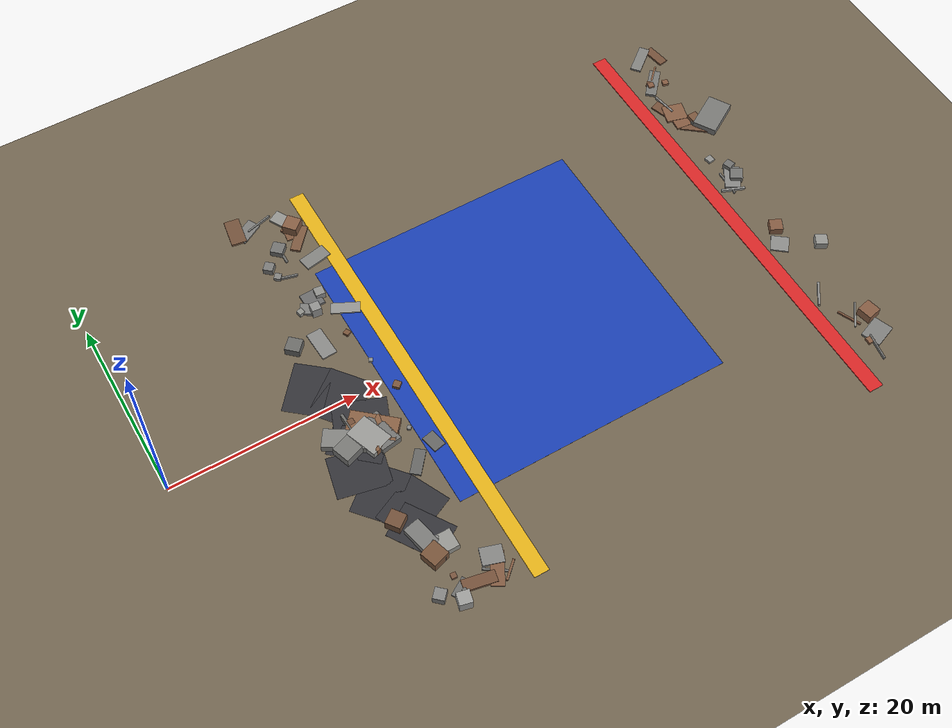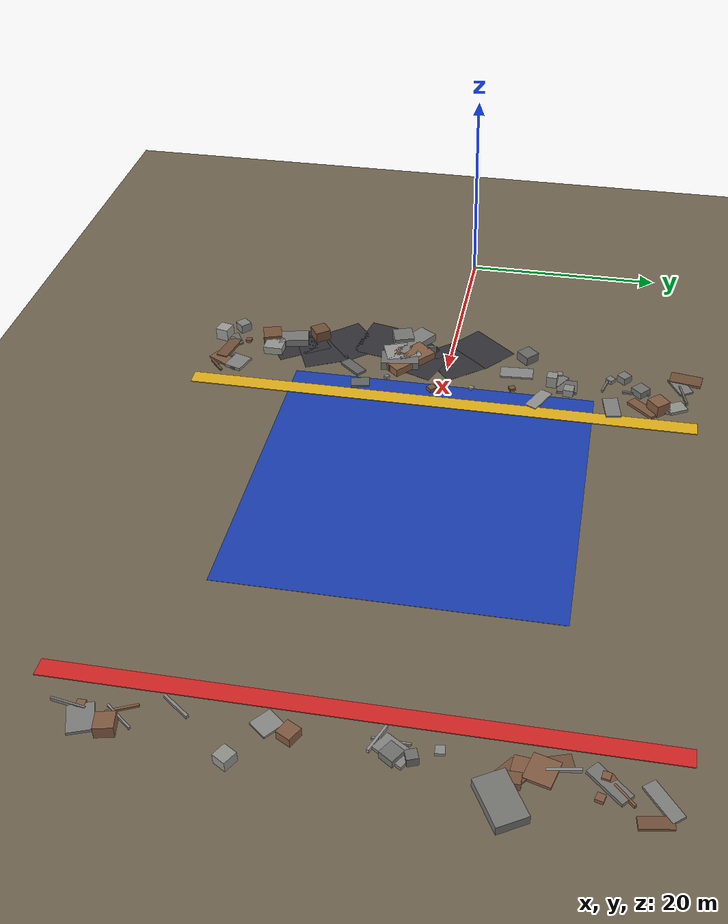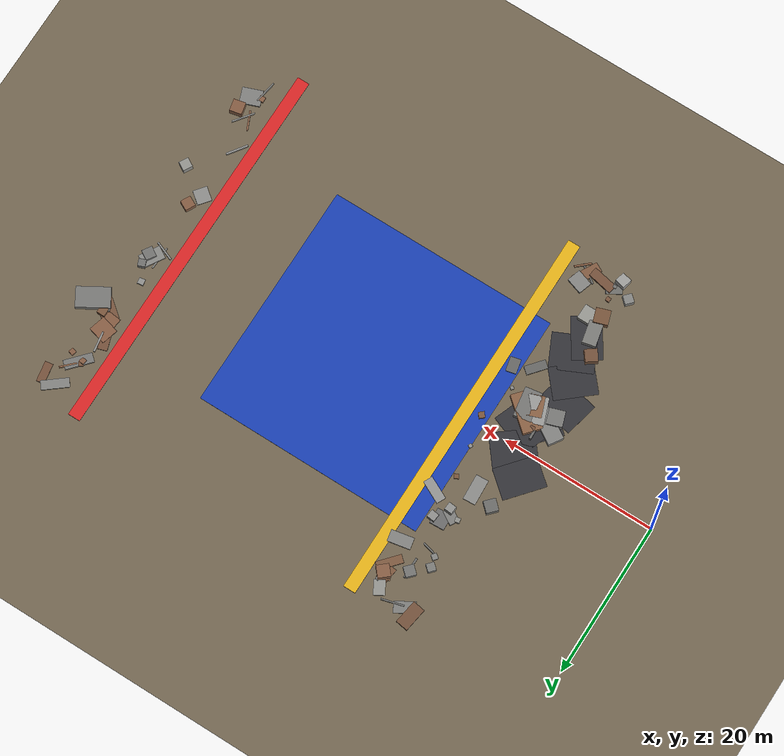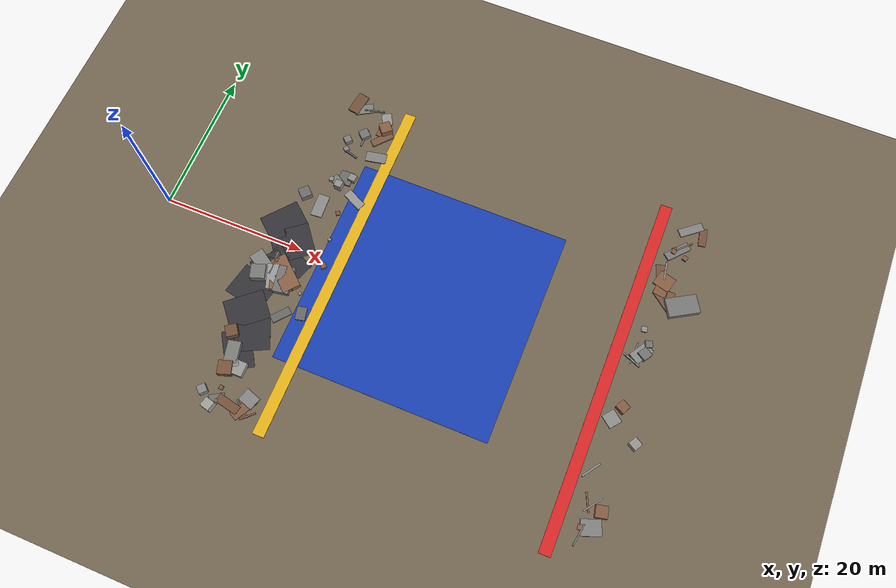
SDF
<sdf version="1.6">
 <world name="navitas_arena">
  <model name="ground_plane">
   <static>true</static>
   <link name="link">
    <collision name="collision">
     <geometry><plane><normal>0 0 1</normal><size>400 400</size></plane></geometry>
     <surface><friction><ode><mu>0.550</mu><mu2>0.550</mu2></ode></friction></surface>
    </collision>
    <visual name="visual">
     <cast_shadows>false</cast_shadows>
     <geometry><plane><normal>0 0 1</normal><size>400 400</size></plane></geometry>
     <material><ambient>0.450 0.400 0.320 1</ambient><diffuse>0.450 0.400 0.320 1</diffuse></material>
    </visual>
   </link>
  </model>
  <model name="landing">
   <static>true</static>
   <pose>38.000 0.000 0.010 0 0 0.000</pose>
   <link name="link">
    <collision name="col"><geometry><box><size>30.000 30.000 0.020</size></box></geometry></collision>
    <visual name="vis">
     <geometry><box><size>30.000 30.000 0.020</size></box></geometry>
     <material><ambient>0.10 0.25 0.70 1</ambient><diffuse>0.10 0.25 0.70 1</diffuse></material>
    </visual>
   </link>
  </model>
  <model name="brd_orta_E">
   <static>true</static>
   <pose>25.800 0.000 0.040 0 0 0.000</pose>
   <link name="link">
    <collision name="col"><geometry><box><size>1.600 50.000 0.080</size></box></geometry></collision>
    <visual name="vis">
     <geometry><box><size>1.600 50.000 0.080</size></box></geometry>
     <material><ambient>0.90 0.70 0.10 1</ambient><diffuse>0.90 0.70 0.10 1</diffuse></material>
    </visual>
   </link>
  </model>
  <model name="road_orta_3_6">
   <static>true</static>
   <pose>18.427 -15.783 0.040 0 0 0.572</pose>
   <link name="link">
    <collision name="col"><geometry><box><size>3.794 5.500 0.020</size></box></geometry></collision>
    <visual name="vis">
     <geometry><box><size>3.794 5.500 0.020</size></box></geometry>
     <material><ambient>0.20 0.20 0.22 1</ambient><diffuse>0.20 0.20 0.22 1</diffuse></material>
    </visual>
   </link>
  </model>
  <model name="road_orta_3_7">
   <static>true</static>
   <pose>18.858 -13.328 0.040 0 0 2.010</pose>
   <link name="link">
    <collision name="col"><geometry><box><size>4.595 5.500 0.020</size></box></geometry></collision>
    <visual name="vis">
     <geometry><box><size>4.595 5.500 0.020</size></box></geometry>
     <material><ambient>0.20 0.20 0.22 1</ambient><diffuse>0.20 0.20 0.22 1</diffuse></material>
    </visual>
   </link>
  </model>
  <model name="road_orta_3_8">
   <static>true</static>
   <pose>17.023 -10.426 0.040 0 0 2.277</pose>
   <link name="link">
    <collision name="col"><geometry><box><size>4.133 5.500 0.020</size></box></geometry></collision>
    <visual name="vis">
     <geometry><box><size>4.133 5.500 0.020</size></box></geometry>
     <material><ambient>0.20 0.20 0.22 1</ambient><diffuse>0.20 0.20 0.22 1</diffuse></material>
    </visual>
   </link>
  </model>
  <model name="road_orta_3_9">
   <static>true</static>
   <pose>16.362 -7.431 0.040 0 0 1.355</pose>
   <link name="link">
    <collision name="col"><geometry><box><size>4.513 5.500 0.020</size></box></geometry></collision>
    <visual name="vis">
     <geometry><box><size>4.513 5.500 0.020</size></box></geometry>
     <material><ambient>0.20 0.20 0.22 1</ambient><diffuse>0.20 0.20 0.22 1</diffuse></material>
    </visual>
   </link>
  </model>
  <model name="road_orta_3_10">
   <static>true</static>
   <pose>17.781 -4.500 0.040 0 0 0.847</pose>
   <link name="link">
    <collision name="col"><geometry><box><size>4.015 5.500 0.020</size></box></geometry></collision>
    <visual name="vis">
     <geometry><box><size>4.015 5.500 0.020</size></box></geometry>
     <material><ambient>0.20 0.20 0.22 1</ambient><diffuse>0.20 0.20 0.22 1</diffuse></material>
    </visual>
   </link>
  </model>
  <model name="road_orta_3_11">
   <static>true</static>
   <pose>19.262 -2.167 0.040 0 0 1.203</pose>
   <link name="link">
    <collision name="col"><geometry><box><size>3.401 5.500 0.020</size></box></geometry></collision>
    <visual name="vis">
     <geometry><box><size>3.401 5.500 0.020</size></box></geometry>
     <material><ambient>0.20 0.20 0.22 1</ambient><diffuse>0.20 0.20 0.22 1</diffuse></material>
    </visual>
   </link>
  </model>
  <model name="road_orta_3_12">
   <static>true</static>
   <pose>18.534 0.500 0.040 0 0 2.237</pose>
   <link name="link">
    <collision name="col"><geometry><box><size>4.715 5.500 0.020</size></box></geometry></collision>
    <visual name="vis">
     <geometry><box><size>4.715 5.500 0.020</size></box></geometry>
     <material><ambient>0.20 0.20 0.22 1</ambient><diffuse>0.20 0.20 0.22 1</diffuse></material>
    </visual>
   </link>
  </model>
  <model name="road_orta_3_13">
   <static>true</static>
   <pose>16.163 3.000 0.040 0 0 2.444</pose>
   <link name="link">
    <collision name="col"><geometry><box><size>4.013 5.500 0.020</size></box></geometry></collision>
    <visual name="vis">
     <geometry><box><size>4.013 5.500 0.020</size></box></geometry>
     <material><ambient>0.20 0.20 0.22 1</ambient><diffuse>0.20 0.20 0.22 1</diffuse></material>
    </visual>
   </link>
  </model>
  <model name="blk_orta_3_0_0">
   <static>true</static>
   <pose>18.077 -16.455 0.400 0 0 1.785</pose>
   <link name="link">
    <collision name="col"><geometry><box><size>2.959 1.737 0.800</size></box></geometry></collision>
    <visual name="vis">
     <geometry><box><size>2.959 1.737 0.800</size></box></geometry>
     <material><ambient>0.48 0.48 0.47 1</ambient><diffuse>0.48 0.48 0.47 1</diffuse></material>
    </visual>
   </link>
  </model>
  <model name="blk_orta_3_0_1">
   <static>true</static>
   <pose>16.777 -13.957 0.565 0 0 2.205</pose>
   <link name="link">
    <collision name="col"><geometry><box><size>1.575 1.575 1.130</size></box></geometry></collision>
    <visual name="vis">
     <geometry><box><size>1.575 1.575 1.130</size></box></geometry>
     <material><ambient>0.45 0.32 0.23 1</ambient><diffuse>0.45 0.32 0.23 1</diffuse></material>
    </visual>
   </link>
  </model>
  <model name="blk_orta_3_0_2">
   <static>true</static>
   <pose>18.453 -18.719 0.400 0 0 1.623</pose>
   <link name="link">
    <collision name="col"><geometry><box><size>0.564 0.564 0.800</size></box></geometry></collision>
    <visual name="vis">
     <geometry><box><size>0.564 0.564 0.800</size></box></geometry>
     <material><ambient>0.45 0.45 0.44 1</ambient><diffuse>0.45 0.45 0.44 1</diffuse></material>
    </visual>
   </link>
  </model>
  <model name="blk_orta_3_0_3">
   <static>true</static>
   <pose>19.082 -17.691 0.400 0 0 2.065</pose>
   <link name="link">
    <collision name="col"><geometry><box><size>0.903 0.903 0.800</size></box></geometry></collision>
    <visual name="vis">
     <geometry><box><size>0.903 0.903 0.800</size></box></geometry>
     <material><ambient>0.55 0.55 0.54 1</ambient><diffuse>0.55 0.55 0.54 1</diffuse></material>
    </visual>
   </link>
  </model>
  <model name="blk_orta_3_0_5">
   <static>true</static>
   <pose>18.738 -19.080 0.400 0 0 1.251</pose>
   <link name="link">
    <collision name="col"><geometry><box><size>0.707 0.707 0.800</size></box></geometry></collision>
    <visual name="vis">
     <geometry><box><size>0.707 0.707 0.800</size></box></geometry>
     <material><ambient>0.50 0.50 0.49 1</ambient><diffuse>0.50 0.50 0.49 1</diffuse></material>
    </visual>
   </link>
  </model>
  <model name="blk_orta_3_0_6">
   <static>true</static>
   <pose>19.666 -18.103 0.400 0 0 3.136</pose>
   <link name="link">
    <collision name="col"><geometry><box><size>1.944 1.944 0.800</size></box></geometry></collision>
    <visual name="vis">
     <geometry><box><size>1.944 1.944 0.800</size></box></geometry>
     <material><ambient>0.59 0.59 0.57 1</ambient><diffuse>0.59 0.59 0.57 1</diffuse></material>
    </visual>
   </link>
  </model>
  <model name="blk_orta_3_0_7">
   <static>true</static>
   <pose>18.194 -18.743 0.550 0 0 1.886</pose>
   <link name="link">
    <collision name="col"><geometry><box><size>1.854 1.854 1.101</size></box></geometry></collision>
    <visual name="vis">
     <geometry><box><size>1.854 1.854 1.101</size></box></geometry>
     <material><ambient>0.47 0.33 0.23 1</ambient><diffuse>0.47 0.33 0.23 1</diffuse></material>
    </visual>
   </link>
  </model>
  <model name="blk_orta_3_1_0">
   <static>true</static>
   <pose>18.008 -2.683 0.400 0 0 0.039</pose>
   <link name="link">
    <collision name="col"><geometry><box><size>0.640 0.640 0.800</size></box></geometry></collision>
    <visual name="vis">
     <geometry><box><size>0.640 0.640 0.800</size></box></geometry>
     <material><ambient>0.46 0.32 0.23 1</ambient><diffuse>0.46 0.32 0.23 1</diffuse></material>
    </visual>
   </link>
  </model>
  <model name="blk_orta_3_1_1">
   <static>true</static>
   <pose>19.944 -4.916 0.400 0 0 1.731</pose>
   <link name="link">
    <collision name="col"><geometry><box><size>3.791 2.208 0.800</size></box></geometry></collision>
    <visual name="vis">
     <geometry><box><size>3.791 2.208 0.800</size></box></geometry>
     <material><ambient>0.46 0.46 0.45 1</ambient><diffuse>0.46 0.46 0.45 1</diffuse></material>
    </visual>
   </link>
  </model>
  <model name="blk_orta_3_1_2">
   <static>true</static>
   <pose>17.666 -3.192 0.400 0 0 1.620</pose>
   <link name="link">
    <collision name="col"><geometry><box><size>3.342 0.290 0.800</size></box></geometry></collision>
    <visual name="vis">
     <geometry><box><size>3.342 0.290 0.800</size></box></geometry>
     <material><ambient>0.42 0.42 0.41 1</ambient><diffuse>0.42 0.42 0.41 1</diffuse></material>
    </visual>
   </link>
  </model>
  <model name="blk_orta_3_1_3">
   <static>true</static>
   <pose>16.330 -5.225 0.575 0 0 0.325</pose>
   <link name="link">
    <collision name="col"><geometry><box><size>2.017 2.017 1.150</size></box></geometry></collision>
    <visual name="vis">
     <geometry><box><size>2.017 2.017 1.150</size></box></geometry>
     <material><ambient>0.47 0.47 0.46 1</ambient><diffuse>0.47 0.47 0.46 1</diffuse></material>
    </visual>
   </link>
  </model>
  <model name="blk_orta_3_1_4">
   <static>true</static>
   <pose>19.626 -4.097 0.400 0 0 2.428</pose>
   <link name="link">
    <collision name="col"><geometry><box><size>4.991 2.495 0.800</size></box></geometry></collision>
    <visual name="vis">
     <geometry><box><size>4.991 2.495 0.800</size></box></geometry>
     <material><ambient>0.54 0.38 0.27 1</ambient><diffuse>0.54 0.38 0.27 1</diffuse></material>
    </visual>
   </link>
  </model>
  <model name="blk_orta_3_1_5">
   <static>true</static>
   <pose>19.666 -5.033 0.400 0 0 0.357</pose>
   <link name="link">
    <collision name="col"><geometry><box><size>3.112 2.685 0.800</size></box></geometry></collision>
    <visual name="vis">
     <geometry><box><size>3.112 2.685 0.800</size></box></geometry>
     <material><ambient>0.54 0.38 0.27 1</ambient><diffuse>0.54 0.38 0.27 1</diffuse></material>
    </visual>
   </link>
  </model>
  <model name="blk_orta_3_1_6">
   <static>true</static>
   <pose>18.818 -4.862 0.400 0 0 1.923</pose>
   <link name="link">
    <collision name="col"><geometry><box><size>3.500 2.561 0.800</size></box></geometry></collision>
    <visual name="vis">
     <geometry><box><size>3.500 2.561 0.800</size></box></geometry>
     <material><ambient>0.60 0.60 0.59 1</ambient><diffuse>0.60 0.60 0.59 1</diffuse></material>
    </visual>
   </link>
  </model>
  <model name="blk_orta_3_1_7">
   <static>true</static>
   <pose>16.785 -4.130 0.400 0 0 2.567</pose>
   <link name="link">
    <collision name="col"><geometry><box><size>4.757 1.998 0.800</size></box></geometry></collision>
    <visual name="vis">
     <geometry><box><size>4.757 1.998 0.800</size></box></geometry>
     <material><ambient>0.51 0.51 0.50 1</ambient><diffuse>0.51 0.51 0.50 1</diffuse></material>
    </visual>
   </link>
  </model>
  <model name="deb_orta_0">
   <static>true</static>
   <pose>23.672 22.133 0.188 0 0 2.661</pose>
   <link name="link">
    <collision name="col"><geometry><box><size>0.436 0.436 0.377</size></box></geometry></collision>
    <visual name="vis">
     <geometry><box><size>0.436 0.436 0.377</size></box></geometry>
     <material><ambient>0.52 0.52 0.51 1</ambient><diffuse>0.52 0.52 0.51 1</diffuse></material>
    </visual>
   </link>
  </model>
  <model name="deb_orta_1">
   <static>true</static>
   <pose>20.444 11.284 0.144 0 0 2.604</pose>
   <link name="link">
    <collision name="col"><geometry><box><size>1.848 1.249 0.289</size></box></geometry></collision>
    <visual name="vis">
     <geometry><box><size>1.848 1.249 0.289</size></box></geometry>
     <material><ambient>0.49 0.49 0.48 1</ambient><diffuse>0.49 0.49 0.48 1</diffuse></material>
    </visual>
   </link>
  </model>
  <model name="deb_orta_2">
   <static>true</static>
   <pose>23.980 -8.225 0.102 0 0 1.784</pose>
   <link name="link">
    <collision name="col"><geometry><box><size>1.866 1.343 0.204</size></box></geometry></collision>
    <visual name="vis">
     <geometry><box><size>1.866 1.343 0.204</size></box></geometry>
     <material><ambient>0.40 0.40 0.39 1</ambient><diffuse>0.40 0.40 0.39 1</diffuse></material>
    </visual>
   </link>
  </model>
  <model name="deb_orta_8">
   <static>true</static>
   <pose>19.496 16.430 0.200 0 0 2.475</pose>
   <link name="link">
    <collision name="col"><geometry><box><size>0.710 0.710 0.400</size></box></geometry></collision>
    <visual name="vis">
     <geometry><box><size>0.710 0.710 0.400</size></box></geometry>
     <material><ambient>0.51 0.51 0.50 1</ambient><diffuse>0.51 0.51 0.50 1</diffuse></material>
    </visual>
   </link>
  </model>
  <model name="deb_orta_9">
   <static>true</static>
   <pose>21.009 19.444 0.357 0 0 0.821</pose>
   <link name="link">
    <collision name="col"><geometry><box><size>1.326 1.326 0.713</size></box></geometry></collision>
    <visual name="vis">
     <geometry><box><size>1.326 1.326 0.713</size></box></geometry>
     <material><ambient>0.45 0.45 0.44 1</ambient><diffuse>0.45 0.45 0.44 1</diffuse></material>
    </visual>
   </link>
  </model>
  <model name="deb_orta_11">
   <static>true</static>
   <pose>23.768 9.625 0.089 0 0 2.682</pose>
   <link name="link">
    <collision name="col"><geometry><box><size>3.023 1.230 0.177</size></box></geometry></collision>
    <visual name="vis">
     <geometry><box><size>3.023 1.230 0.177</size></box></geometry>
     <material><ambient>0.58 0.58 0.57 1</ambient><diffuse>0.58 0.58 0.57 1</diffuse></material>
    </visual>
   </link>
  </model>
  <model name="deb_orta_16">
   <static>true</static>
   <pose>19.248 23.329 0.092 0 0 0.513</pose>
   <link name="link">
    <collision name="col"><geometry><box><size>2.667 1.438 0.184</size></box></geometry></collision>
    <visual name="vis">
     <geometry><box><size>2.667 1.438 0.184</size></box></geometry>
     <material><ambient>0.49 0.49 0.48 1</ambient><diffuse>0.49 0.49 0.48 1</diffuse></material>
    </visual>
   </link>
  </model>
  <model name="deb_orta_18">
   <static>true</static>
   <pose>18.757 -21.170 0.147 0 0 3.060</pose>
   <link name="link">
    <collision name="col"><geometry><box><size>0.548 0.548 0.293</size></box></geometry></collision>
    <visual name="vis">
     <geometry><box><size>0.548 0.548 0.293</size></box></geometry>
     <material><ambient>0.47 0.33 0.24 1</ambient><diffuse>0.47 0.33 0.24 1</diffuse></material>
    </visual>
   </link>
  </model>
  <model name="deb_orta_20">
   <static>true</static>
   <pose>22.968 22.937 0.152 0 0 2.080</pose>
   <link name="link">
    <collision name="col"><geometry><box><size>1.848 1.401 0.303</size></box></geometry></collision>
    <visual name="vis">
     <geometry><box><size>1.848 1.401 0.303</size></box></geometry>
     <material><ambient>0.58 0.58 0.56 1</ambient><diffuse>0.58 0.58 0.56 1</diffuse></material>
    </visual>
   </link>
  </model>
  <model name="deb_orta_26">
   <static>true</static>
   <pose>20.479 15.930 0.131 0 0 2.877</pose>
   <link name="link">
    <collision name="col"><geometry><box><size>1.889 0.208 0.261</size></box></geometry></collision>
    <visual name="vis">
     <geometry><box><size>1.889 0.208 0.261</size></box></geometry>
     <material><ambient>0.45 0.45 0.44 1</ambient><diffuse>0.45 0.45 0.44 1</diffuse></material>
    </visual>
   </link>
  </model>
  <model name="deb_orta_30">
   <static>true</static>
   <pose>17.138 7.847 0.469 0 0 2.381</pose>
   <link name="link">
    <collision name="col"><geometry><box><size>1.533 1.533 0.939</size></box></geometry></collision>
    <visual name="vis">
     <geometry><box><size>1.533 1.533 0.939</size></box></geometry>
     <material><ambient>0.42 0.42 0.41 1</ambient><diffuse>0.42 0.42 0.41 1</diffuse></material>
    </visual>
   </link>
  </model>
  <model name="deb_orta_34">
   <static>true</static>
   <pose>23.913 -1.003 0.205 0 0 0.719</pose>
   <link name="link">
    <collision name="col"><geometry><box><size>0.755 0.755 0.410</size></box></geometry></collision>
    <visual name="vis">
     <geometry><box><size>0.755 0.755 0.410</size></box></geometry>
     <material><ambient>0.48 0.34 0.24 1</ambient><diffuse>0.48 0.34 0.24 1</diffuse></material>
    </visual>
   </link>
  </model>
  <model name="deb_orta_36">
   <static>true</static>
   <pose>18.915 -22.934 0.163 0 0 0.125</pose>
   <link name="link">
    <collision name="col"><geometry><box><size>0.424 0.424 0.326</size></box></geometry></collision>
    <visual name="vis">
     <geometry><box><size>0.424 0.424 0.326</size></box></geometry>
     <material><ambient>0.44 0.44 0.43 1</ambient><diffuse>0.44 0.44 0.43 1</diffuse></material>
    </visual>
   </link>
  </model>
  <model name="deb_orta_40">
   <static>true</static>
   <pose>18.149 23.851 0.133 0 0 1.415</pose>
   <link name="link">
    <collision name="col"><geometry><box><size>3.116 1.611 0.266</size></box></geometry></collision>
    <visual name="vis">
     <geometry><box><size>3.116 1.611 0.266</size></box></geometry>
     <material><ambient>0.45 0.32 0.23 1</ambient><diffuse>0.45 0.32 0.23 1</diffuse></material>
    </visual>
   </link>
  </model>
  <model name="deb_orta_50">
   <static>true</static>
   <pose>22.587 -22.509 0.097 0 0 1.074</pose>
   <link name="link">
    <collision name="col"><geometry><box><size>3.512 1.299 0.193</size></box></geometry></collision>
    <visual name="vis">
     <geometry><box><size>3.512 1.299 0.193</size></box></geometry>
     <material><ambient>0.51 0.36 0.26 1</ambient><diffuse>0.51 0.36 0.26 1</diffuse></material>
    </visual>
   </link>
  </model>
  <model name="deb_orta_52">
   <static>true</static>
   <pose>23.576 19.777 0.143 0 0 0.852</pose>
   <link name="link">
    <collision name="col"><geometry><box><size>3.214 1.062 0.287</size></box></geometry></collision>
    <visual name="vis">
     <geometry><box><size>3.214 1.062 0.287</size></box></geometry>
     <material><ambient>0.49 0.35 0.25 1</ambient><diffuse>0.49 0.35 0.25 1</diffuse></material>
    </visual>
   </link>
  </model>
  <model name="deb_orta_53">
   <static>true</static>
   <pose>22.772 -21.197 0.146 0 0 2.825</pose>
   <link name="link">
    <collision name="col"><geometry><box><size>2.164 1.800 0.292</size></box></geometry></collision>
    <visual name="vis">
     <geometry><box><size>2.164 1.800 0.292</size></box></geometry>
     <material><ambient>0.52 0.52 0.51 1</ambient><diffuse>0.52 0.52 0.51 1</diffuse></material>
    </visual>
   </link>
  </model>
  <model name="deb_orta_55">
   <static>true</static>
   <pose>23.536 21.202 0.636 0 0 2.290</pose>
   <link name="link">
    <collision name="col"><geometry><box><size>1.567 1.567 1.272</size></box></geometry></collision>
    <visual name="vis">
     <geometry><box><size>1.567 1.567 1.272</size></box></geometry>
     <material><ambient>0.53 0.37 0.27 1</ambient><diffuse>0.53 0.37 0.27 1</diffuse></material>
    </visual>
   </link>
  </model>
  <model name="deb_orta_56">
   <static>true</static>
   <pose>22.492 6.861 0.144 0 0 0.492</pose>
   <link name="link">
    <collision name="col"><geometry><box><size>0.595 0.595 0.289</size></box></geometry></collision>
    <visual name="vis">
     <geometry><box><size>0.595 0.595 0.289</size></box></geometry>
     <material><ambient>0.47 0.33 0.23 1</ambient><diffuse>0.47 0.33 0.23 1</diffuse></material>
    </visual>
   </link>
  </model>
  <model name="deb_orta_61">
   <static>true</static>
   <pose>19.556 11.297 0.240 0 0 0.211</pose>
   <link name="link">
    <collision name="col"><geometry><box><size>0.626 0.626 0.479</size></box></geometry></collision>
    <visual name="vis">
     <geometry><box><size>0.626 0.626 0.479</size></box></geometry>
     <material><ambient>0.56 0.56 0.54 1</ambient><diffuse>0.56 0.56 0.54 1</diffuse></material>
    </visual>
   </link>
  </model>
  <model name="deb_orta_62">
   <static>true</static>
   <pose>23.197 21.047 0.087 0 0 1.441</pose>
   <link name="link">
    <collision name="col"><geometry><box><size>2.036 1.366 0.173</size></box></geometry></collision>
    <visual name="vis">
     <geometry><box><size>2.036 1.366 0.173</size></box></geometry>
     <material><ambient>0.49 0.34 0.24 1</ambient><diffuse>0.49 0.34 0.24 1</diffuse></material>
    </visual>
   </link>
  </model>
  <model name="deb_orta_67">
   <static>true</static>
   <pose>19.721 7.015 0.085 0 0 1.624</pose>
   <link name="link">
    <collision name="col"><geometry><box><size>3.300 1.612 0.169</size></box></geometry></collision>
    <visual name="vis">
     <geometry><box><size>3.300 1.612 0.169</size></box></geometry>
     <material><ambient>0.54 0.54 0.53 1</ambient><diffuse>0.54 0.54 0.53 1</diffuse></material>
    </visual>
   </link>
  </model>
  <model name="deb_orta_68">
   <static>true</static>
   <pose>23.927 16.771 0.115 0 0 0.190</pose>
   <link name="link">
    <collision name="col"><geometry><box><size>2.913 1.481 0.231</size></box></geometry></collision>
    <visual name="vis">
     <geometry><box><size>2.913 1.481 0.231</size></box></geometry>
     <material><ambient>0.51 0.51 0.50 1</ambient><diffuse>0.51 0.51 0.50 1</diffuse></material>
    </visual>
   </link>
  </model>
  <model name="deb_orta_70">
   <static>true</static>
   <pose>20.749 23.597 0.145 0 0 0.267</pose>
   <link name="link">
    <collision name="col"><geometry><box><size>2.885 0.178 0.289</size></box></geometry></collision>
    <visual name="vis">
     <geometry><box><size>2.885 0.178 0.289</size></box></geometry>
     <material><ambient>0.47 0.47 0.46 1</ambient><diffuse>0.47 0.47 0.46 1</diffuse></material>
    </visual>
   </link>
  </model>
  <model name="deb_orta_72">
   <static>true</static>
   <pose>16.698 -22.316 0.449 0 0 2.390</pose>
   <link name="link">
    <collision name="col"><geometry><box><size>1.153 1.153 0.897</size></box></geometry></collision>
    <visual name="vis">
     <geometry><box><size>1.153 1.153 0.897</size></box></geometry>
     <material><ambient>0.52 0.52 0.51 1</ambient><diffuse>0.52 0.52 0.51 1</diffuse></material>
    </visual>
   </link>
  </model>
  <model name="deb_orta_75">
   <static>true</static>
   <pose>23.046 2.857 0.123 0 0 2.737</pose>
   <link name="link">
    <collision name="col"><geometry><box><size>0.436 0.436 0.246</size></box></geometry></collision>
    <visual name="vis">
     <geometry><box><size>0.436 0.436 0.246</size></box></geometry>
     <material><ambient>0.56 0.56 0.55 1</ambient><diffuse>0.56 0.56 0.55 1</diffuse></material>
    </visual>
   </link>
  </model>
  <model name="deb_orta_84">
   <static>true</static>
   <pose>22.444 -22.619 0.093 0 0 2.540</pose>
   <link name="link">
    <collision name="col"><geometry><box><size>2.745 0.215 0.187</size></box></geometry></collision>
    <visual name="vis">
     <geometry><box><size>2.745 0.215 0.187</size></box></geometry>
     <material><ambient>0.42 0.42 0.41 1</ambient><diffuse>0.42 0.42 0.41 1</diffuse></material>
    </visual>
   </link>
  </model>
  <model name="deb_orta_86">
   <static>true</static>
   <pose>23.114 21.848 0.138 0 0 0.419</pose>
   <link name="link">
    <collision name="col"><geometry><box><size>1.630 0.188 0.276</size></box></geometry></collision>
    <visual name="vis">
     <geometry><box><size>1.630 0.188 0.276</size></box></geometry>
     <material><ambient>0.54 0.38 0.27 1</ambient><diffuse>0.54 0.38 0.27 1</diffuse></material>
    </visual>
   </link>
  </model>
  <model name="deb_orta_94">
   <static>true</static>
   <pose>20.524 -22.801 0.159 0 0 2.941</pose>
   <link name="link">
    <collision name="col"><geometry><box><size>3.263 1.194 0.318</size></box></geometry></collision>
    <visual name="vis">
     <geometry><box><size>3.263 1.194 0.318</size></box></geometry>
     <material><ambient>0.46 0.32 0.23 1</ambient><diffuse>0.46 0.32 0.23 1</diffuse></material>
    </visual>
   </link>
  </model>
  <model name="deb_orta_98">
   <static>true</static>
   <pose>21.166 19.030 0.104 0 0 1.564</pose>
   <link name="link">
    <collision name="col"><geometry><box><size>2.708 0.250 0.207</size></box></geometry></collision>
    <visual name="vis">
     <geometry><box><size>2.708 0.250 0.207</size></box></geometry>
     <material><ambient>0.42 0.42 0.41 1</ambient><diffuse>0.42 0.42 0.41 1</diffuse></material>
    </visual>
   </link>
  </model>
  <model name="deb_orta_110">
   <static>true</static>
   <pose>22.242 12.437 0.379 0 0 3.040</pose>
   <link name="link">
    <collision name="col"><geometry><box><size>1.005 1.005 0.759</size></box></geometry></collision>
    <visual name="vis">
     <geometry><box><size>1.005 1.005 0.759</size></box></geometry>
     <material><ambient>0.56 0.56 0.55 1</ambient><diffuse>0.56 0.56 0.55 1</diffuse></material>
    </visual>
   </link>
  </model>
  <model name="deb_orta_114">
   <static>true</static>
   <pose>19.160 17.756 0.364 0 0 2.416</pose>
   <link name="link">
    <collision name="col"><geometry><box><size>1.027 1.027 0.728</size></box></geometry></collision>
    <visual name="vis">
     <geometry><box><size>1.027 1.027 0.728</size></box></geometry>
     <material><ambient>0.48 0.48 0.47 1</ambient><diffuse>0.48 0.48 0.47 1</diffuse></material>
    </visual>
   </link>
  </model>
  <model name="deb_orta_116">
   <static>true</static>
   <pose>20.956 10.679 0.596 0 0 1.489</pose>
   <link name="link">
    <collision name="col"><geometry><box><size>1.012 1.012 1.192</size></box></geometry></collision>
    <visual name="vis">
     <geometry><box><size>1.012 1.012 1.192</size></box></geometry>
     <material><ambient>0.57 0.57 0.56 1</ambient><diffuse>0.57 0.57 0.56 1</diffuse></material>
    </visual>
   </link>
  </model>
  <model name="deb_orta_122">
   <static>true</static>
   <pose>22.653 -5.766 0.137 0 0 2.468</pose>
   <link name="link">
    <collision name="col"><geometry><box><size>0.412 0.412 0.275</size></box></geometry></collision>
    <visual name="vis">
     <geometry><box><size>0.412 0.412 0.275</size></box></geometry>
     <material><ambient>0.53 0.53 0.52 1</ambient><diffuse>0.53 0.53 0.52 1</diffuse></material>
    </visual>
   </link>
  </model>
  <model name="deb_orta_133">
   <static>true</static>
   <pose>21.591 -9.425 0.126 0 0 0.878</pose>
   <link name="link">
    <collision name="col"><geometry><box><size>2.699 1.116 0.251</size></box></geometry></collision>
    <visual name="vis">
     <geometry><box><size>2.699 1.116 0.251</size></box></geometry>
     <material><ambient>0.40 0.40 0.39 1</ambient><diffuse>0.40 0.40 0.39 1</diffuse></material>
    </visual>
   </link>
  </model>
  <model name="deb_orta_134">
   <static>true</static>
   <pose>23.514 -23.245 0.106 0 0 0.744</pose>
   <link name="link">
    <collision name="col"><geometry><box><size>2.163 0.220 0.212</size></box></geometry></collision>
    <visual name="vis">
     <geometry><box><size>2.163 0.220 0.212</size></box></geometry>
     <material><ambient>0.50 0.35 0.25 1</ambient><diffuse>0.50 0.35 0.25 1</diffuse></material>
    </visual>
   </link>
  </model>
  <model name="deb_orta_137">
   <static>true</static>
   <pose>18.364 -23.859 0.633 0 0 1.332</pose>
   <link name="link">
    <collision name="col"><geometry><box><size>1.315 1.315 1.266</size></box></geometry></collision>
    <visual name="vis">
     <geometry><box><size>1.315 1.315 1.266</size></box></geometry>
     <material><ambient>0.62 0.62 0.61 1</ambient><diffuse>0.62 0.62 0.61 1</diffuse></material>
    </visual>
   </link>
  </model>
  <model name="deb_orta_146">
   <static>true</static>
   <pose>18.866 -22.693 0.090 0 0 0.546</pose>
   <link name="link">
    <collision name="col"><geometry><box><size>2.024 1.306 0.179</size></box></geometry></collision>
    <visual name="vis">
     <geometry><box><size>2.024 1.306 0.179</size></box></geometry>
     <material><ambient>0.43 0.43 0.42 1</ambient><diffuse>0.43 0.43 0.42 1</diffuse></material>
    </visual>
   </link>
  </model>
  <model name="deb_orta_151">
   <static>true</static>
   <pose>21.299 12.204 0.129 0 0 0.041</pose>
   <link name="link">
    <collision name="col"><geometry><box><size>1.899 2.005 0.257</size></box></geometry></collision>
    <visual name="vis">
     <geometry><box><size>1.899 2.005 0.257</size></box></geometry>
     <material><ambient>0.42 0.42 0.42 1</ambient><diffuse>0.42 0.42 0.42 1</diffuse></material>
    </visual>
   </link>
  </model>
  <model name="brd_zor_W">
   <static>true</static>
   <pose>64.200 0.000 0.040 0 0 0.000</pose>
   <link name="link">
    <collision name="col"><geometry><box><size>1.600 50.000 0.080</size></box></geometry></collision>
    <visual name="vis">
     <geometry><box><size>1.600 50.000 0.080</size></box></geometry>
     <material><ambient>0.85 0.15 0.15 1</ambient><diffuse>0.85 0.15 0.15 1</diffuse></material>
    </visual>
   </link>
  </model>
  <model name="blk_zor_1_2_3">
   <static>true</static>
   <pose>70.351 11.599 0.400 0 0 0.538</pose>
   <link name="link">
    <collision name="col"><geometry><box><size>4.258 2.605 0.800</size></box></geometry></collision>
    <visual name="vis">
     <geometry><box><size>4.258 2.605 0.800</size></box></geometry>
     <material><ambient>0.47 0.47 0.46 1</ambient><diffuse>0.47 0.47 0.46 1</diffuse></material>
    </visual>
   </link>
  </model>
  <model name="deb_zor_11">
   <static>true</static>
   <pose>66.486 2.138 0.159 0 0 2.765</pose>
   <link name="link">
    <collision name="col"><geometry><box><size>2.578 0.210 0.317</size></box></geometry></collision>
    <visual name="vis">
     <geometry><box><size>2.578 0.210 0.317</size></box></geometry>
     <material><ambient>0.58 0.58 0.57 1</ambient><diffuse>0.58 0.58 0.57 1</diffuse></material>
    </visual>
   </link>
  </model>
  <model name="deb_zor_21">
   <static>true</static>
   <pose>67.094 19.111 0.164 0 0 2.237</pose>
   <link name="link">
    <collision name="col"><geometry><box><size>0.574 0.574 0.328</size></box></geometry></collision>
    <visual name="vis">
     <geometry><box><size>0.574 0.574 0.328</size></box></geometry>
     <material><ambient>0.47 0.33 0.24 1</ambient><diffuse>0.47 0.33 0.24 1</diffuse></material>
    </visual>
   </link>
  </model>
  <model name="deb_zor_26">
   <static>true</static>
   <pose>67.295 -4.258 0.403 0 0 1.092</pose>
   <link name="link">
    <collision name="col"><geometry><box><size>1.345 1.345 0.806</size></box></geometry></collision>
    <visual name="vis">
     <geometry><box><size>1.345 1.345 0.806</size></box></geometry>
     <material><ambient>0.52 0.36 0.26 1</ambient><diffuse>0.52 0.36 0.26 1</diffuse></material>
    </visual>
   </link>
  </model>
  <model name="deb_zor_57">
   <static>true</static>
   <pose>67.186 14.214 0.121 0 0 2.872</pose>
   <link name="link">
    <collision name="col"><geometry><box><size>2.373 2.190 0.241</size></box></geometry></collision>
    <visual name="vis">
     <geometry><box><size>2.373 2.190 0.241</size></box></geometry>
     <material><ambient>0.53 0.37 0.27 1</ambient><diffuse>0.53 0.37 0.27 1</diffuse></material>
    </visual>
   </link>
  </model>
  <model name="deb_zor_82">
   <static>true</static>
   <pose>68.324 22.786 0.112 0 0 0.679</pose>
   <link name="link">
    <collision name="col"><geometry><box><size>3.453 1.166 0.224</size></box></geometry></collision>
    <visual name="vis">
     <geometry><box><size>3.453 1.166 0.224</size></box></geometry>
     <material><ambient>0.51 0.51 0.50 1</ambient><diffuse>0.51 0.51 0.50 1</diffuse></material>
    </visual>
   </link>
  </model>
  <model name="deb_zor_83">
   <static>true</static>
   <pose>70.185 -8.204 0.461 0 0 1.049</pose>
   <link name="link">
    <collision name="col"><geometry><box><size>1.254 1.254 0.922</size></box></geometry></collision>
    <visual name="vis">
     <geometry><box><size>1.254 1.254 0.922</size></box></geometry>
     <material><ambient>0.58 0.58 0.56 1</ambient><diffuse>0.58 0.58 0.56 1</diffuse></material>
    </visual>
   </link>
  </model>
  <model name="deb_zor_95">
   <static>true</static>
   <pose>68.386 -19.833 0.123 0 0 0.359</pose>
   <link name="link">
    <collision name="col"><geometry><box><size>2.604 2.068 0.247</size></box></geometry></collision>
    <visual name="vis">
     <geometry><box><size>2.604 2.068 0.247</size></box></geometry>
     <material><ambient>0.50 0.50 0.49 1</ambient><diffuse>0.50 0.50 0.49 1</diffuse></material>
    </visual>
   </link>
  </model>
  <model name="deb_zor_104">
   <static>true</static>
   <pose>67.761 -17.107 0.119 0 0 0.925</pose>
   <link name="link">
    <collision name="col"><geometry><box><size>2.936 0.167 0.238</size></box></geometry></collision>
    <visual name="vis">
     <geometry><box><size>2.936 0.167 0.238</size></box></geometry>
     <material><ambient>0.56 0.56 0.55 1</ambient><diffuse>0.56 0.56 0.55 1</diffuse></material>
    </visual>
   </link>
  </model>
  <model name="deb_zor_111">
   <static>true</static>
   <pose>67.060 18.737 0.250 0 0 1.371</pose>
   <link name="link">
    <collision name="col"><geometry><box><size>0.652 0.652 0.499</size></box></geometry></collision>
    <visual name="vis">
     <geometry><box><size>0.652 0.652 0.499</size></box></geometry>
     <material><ambient>0.52 0.36 0.26 1</ambient><diffuse>0.52 0.36 0.26 1</diffuse></material>
    </visual>
   </link>
  </model>
  <model name="deb_zor_114">
   <static>true</static>
   <pose>66.474 3.177 0.100 0 0 1.533</pose>
   <link name="link">
    <collision name="col"><geometry><box><size>2.990 0.175 0.200</size></box></geometry></collision>
    <visual name="vis">
     <geometry><box><size>2.990 0.175 0.200</size></box></geometry>
     <material><ambient>0.53 0.53 0.52 1</ambient><diffuse>0.53 0.53 0.52 1</diffuse></material>
    </visual>
   </link>
  </model>
  <model name="deb_zor_116">
   <static>true</static>
   <pose>68.489 12.344 0.335 0 0 0.008</pose>
   <link name="link">
    <collision name="col"><geometry><box><size>1.052 1.052 0.670</size></box></geometry></collision>
    <visual name="vis">
     <geometry><box><size>1.052 1.052 0.670</size></box></geometry>
     <material><ambient>0.48 0.34 0.24 1</ambient><diffuse>0.48 0.34 0.24 1</diffuse></material>
    </visual>
   </link>
  </model>
  <model name="deb_zor_128">
   <static>true</static>
   <pose>68.782 18.417 0.153 0 0 2.857</pose>
   <link name="link">
    <collision name="col"><geometry><box><size>0.660 0.660 0.306</size></box></geometry></collision>
    <visual name="vis">
     <geometry><box><size>0.660 0.660 0.306</size></box></geometry>
     <material><ambient>0.52 0.36 0.26 1</ambient><diffuse>0.52 0.36 0.26 1</diffuse></material>
    </visual>
   </link>
  </model>
  <model name="deb_zor_129">
   <static>true</static>
   <pose>66.504 -6.131 0.092 0 0 2.472</pose>
   <link name="link">
    <collision name="col"><geometry><box><size>1.882 1.824 0.184</size></box></geometry></collision>
    <visual name="vis">
     <geometry><box><size>1.882 1.824 0.184</size></box></geometry>
     <material><ambient>0.55 0.55 0.54 1</ambient><diffuse>0.55 0.55 0.54 1</diffuse></material>
    </visual>
   </link>
  </model>
  <model name="deb_zor_133">
   <static>true</static>
   <pose>67.254 -21.252 0.156 0 0 1.412</pose>
   <link name="link">
    <collision name="col"><geometry><box><size>2.948 0.174 0.312</size></box></geometry></collision>
    <visual name="vis">
     <geometry><box><size>2.948 0.174 0.312</size></box></geometry>
     <material><ambient>0.48 0.48 0.47 1</ambient><diffuse>0.48 0.48 0.47 1</diffuse></material>
    </visual>
   </link>
  </model>
  <model name="deb_zor_135">
   <static>true</static>
   <pose>67.192 13.364 0.102 0 0 1.462</pose>
   <link name="link">
    <collision name="col"><geometry><box><size>2.740 1.764 0.204</size></box></geometry></collision>
    <visual name="vis">
     <geometry><box><size>2.740 1.764 0.204</size></box></geometry>
     <material><ambient>0.52 0.36 0.26 1</ambient><diffuse>0.52 0.36 0.26 1</diffuse></material>
    </visual>
   </link>
  </model>
  <model name="deb_zor_136">
   <static>true</static>
   <pose>67.519 18.999 0.156 0 0 0.843</pose>
   <link name="link">
    <collision name="col"><geometry><box><size>3.591 1.195 0.313</size></box></geometry></collision>
    <visual name="vis">
     <geometry><box><size>3.591 1.195 0.313</size></box></geometry>
     <material><ambient>0.47 0.47 0.46 1</ambient><diffuse>0.47 0.47 0.46 1</diffuse></material>
    </visual>
   </link>
  </model>
  <model name="deb_zor_139">
   <static>true</static>
   <pose>68.907 -17.660 0.521 0 0 0.210</pose>
   <link name="link">
    <collision name="col"><geometry><box><size>1.559 1.559 1.043</size></box></geometry></collision>
    <visual name="vis">
     <geometry><box><size>1.559 1.559 1.043</size></box></geometry>
     <material><ambient>0.52 0.36 0.26 1</ambient><diffuse>0.52 0.36 0.26 1</diffuse></material>
    </visual>
   </link>
  </model>
  <model name="deb_zor_143">
   <static>true</static>
   <pose>66.370 15.118 0.089 0 0 1.891</pose>
   <link name="link">
    <collision name="col"><geometry><box><size>2.527 1.211 0.179</size></box></geometry></collision>
    <visual name="vis">
     <geometry><box><size>2.527 1.211 0.179</size></box></geometry>
     <material><ambient>0.46 0.32 0.23 1</ambient><diffuse>0.46 0.32 0.23 1</diffuse></material>
    </visual>
   </link>
  </model>
  <model name="deb_zor_145">
   <static>true</static>
   <pose>68.368 11.716 0.092 0 0 2.472</pose>
   <link name="link">
    <collision name="col"><geometry><box><size>3.365 2.032 0.183</size></box></geometry></collision>
    <visual name="vis">
     <geometry><box><size>3.365 2.032 0.183</size></box></geometry>
     <material><ambient>0.47 0.33 0.24 1</ambient><diffuse>0.47 0.33 0.24 1</diffuse></material>
    </visual>
   </link>
  </model>
  <model name="deb_zor_149">
   <static>true</static>
   <pose>70.138 22.295 0.108 0 0 1.734</pose>
   <link name="link">
    <collision name="col"><geometry><box><size>2.592 1.022 0.217</size></box></geometry></collision>
    <visual name="vis">
     <geometry><box><size>2.592 1.022 0.217</size></box></geometry>
     <material><ambient>0.46 0.32 0.23 1</ambient><diffuse>0.46 0.32 0.23 1</diffuse></material>
    </visual>
   </link>
  </model>
  <model name="deb_zor_153">
   <static>true</static>
   <pose>67.345 3.540 0.148 0 0 1.022</pose>
   <link name="link">
    <collision name="col"><geometry><box><size>2.806 1.673 0.295</size></box></geometry></collision>
    <visual name="vis">
     <geometry><box><size>2.806 1.673 0.295</size></box></geometry>
     <material><ambient>0.53 0.53 0.52 1</ambient><diffuse>0.53 0.53 0.52 1</diffuse></material>
    </visual>
   </link>
  </model>
  <model name="deb_zor_156">
   <static>true</static>
   <pose>68.304 20.083 0.158 0 0 0.784</pose>
   <link name="link">
    <collision name="col"><geometry><box><size>2.164 0.185 0.316</size></box></geometry></collision>
    <visual name="vis">
     <geometry><box><size>2.164 0.185 0.316</size></box></geometry>
     <material><ambient>0.55 0.38 0.27 1</ambient><diffuse>0.55 0.38 0.27 1</diffuse></material>
    </visual>
   </link>
  </model>
  <model name="deb_zor_162">
   <static>true</static>
   <pose>67.783 3.460 0.356 0 0 0.998</pose>
   <link name="link">
    <collision name="col"><geometry><box><size>1.347 1.347 0.712</size></box></geometry></collision>
    <visual name="vis">
     <geometry><box><size>1.347 1.347 0.712</size></box></geometry>
     <material><ambient>0.45 0.45 0.44 1</ambient><diffuse>0.45 0.45 0.44 1</diffuse></material>
    </visual>
   </link>
  </model>
  <model name="deb_zor_163">
   <static>true</static>
   <pose>66.135 -13.228 0.142 0 0 0.957</pose>
   <link name="link">
    <collision name="col"><geometry><box><size>2.797 0.236 0.283</size></box></geometry></collision>
    <visual name="vis">
     <geometry><box><size>2.797 0.236 0.283</size></box></geometry>
     <material><ambient>0.54 0.54 0.53 1</ambient><diffuse>0.54 0.54 0.53 1</diffuse></material>
    </visual>
   </link>
  </model>
  <model name="deb_zor_164">
   <static>true</static>
   <pose>68.119 11.853 0.256 0 0 1.876</pose>
   <link name="link">
    <collision name="col"><geometry><box><size>0.520 0.520 0.511</size></box></geometry></collision>
    <visual name="vis">
     <geometry><box><size>0.520 0.520 0.511</size></box></geometry>
     <material><ambient>0.48 0.48 0.47 1</ambient><diffuse>0.48 0.48 0.47 1</diffuse></material>
    </visual>
   </link>
  </model>
  <model name="deb_zor_165">
   <static>true</static>
   <pose>66.860 15.727 0.139 0 0 1.730</pose>
   <link name="link">
    <collision name="col"><geometry><box><size>2.622 0.225 0.277</size></box></geometry></collision>
    <visual name="vis">
     <geometry><box><size>2.622 0.225 0.277</size></box></geometry>
     <material><ambient>0.57 0.57 0.56 1</ambient><diffuse>0.57 0.57 0.56 1</diffuse></material>
    </visual>
   </link>
  </model>
  <model name="deb_zor_166">
   <static>true</static>
   <pose>67.146 -20.286 0.142 0 0 3.134</pose>
   <link name="link">
    <collision name="col"><geometry><box><size>0.698 0.698 0.283</size></box></geometry></collision>
    <visual name="vis">
     <geometry><box><size>0.698 0.698 0.283</size></box></geometry>
     <material><ambient>0.53 0.37 0.27 1</ambient><diffuse>0.53 0.37 0.27 1</diffuse></material>
    </visual>
   </link>
  </model>
  <model name="deb_zor_167">
   <static>true</static>
   <pose>67.838 4.906 0.384 0 0 1.929</pose>
   <link name="link">
    <collision name="col"><geometry><box><size>0.922 0.922 0.769</size></box></geometry></collision>
    <visual name="vis">
     <geometry><box><size>0.922 0.922 0.769</size></box></geometry>
     <material><ambient>0.44 0.44 0.43 1</ambient><diffuse>0.44 0.44 0.43 1</diffuse></material>
    </visual>
   </link>
  </model>
  <model name="deb_zor_186">
   <static>true</static>
   <pose>67.001 -17.132 0.105 0 0 1.997</pose>
   <link name="link">
    <collision name="col"><geometry><box><size>2.574 0.199 0.210</size></box></geometry></collision>
    <visual name="vis">
     <geometry><box><size>2.574 0.199 0.210</size></box></geometry>
     <material><ambient>0.53 0.37 0.27 1</ambient><diffuse>0.53 0.37 0.27 1</diffuse></material>
    </visual>
   </link>
  </model>
  <model name="deb_zor_188">
   <static>true</static>
   <pose>66.710 6.791 0.143 0 0 0.140</pose>
   <link name="link">
    <collision name="col"><geometry><box><size>0.761 0.761 0.286</size></box></geometry></collision>
    <visual name="vis">
     <geometry><box><size>0.761 0.761 0.286</size></box></geometry>
     <material><ambient>0.56 0.56 0.55 1</ambient><diffuse>0.56 0.56 0.55 1</diffuse></material>
    </visual>
   </link>
  </model>
 </world>
</sdf>
